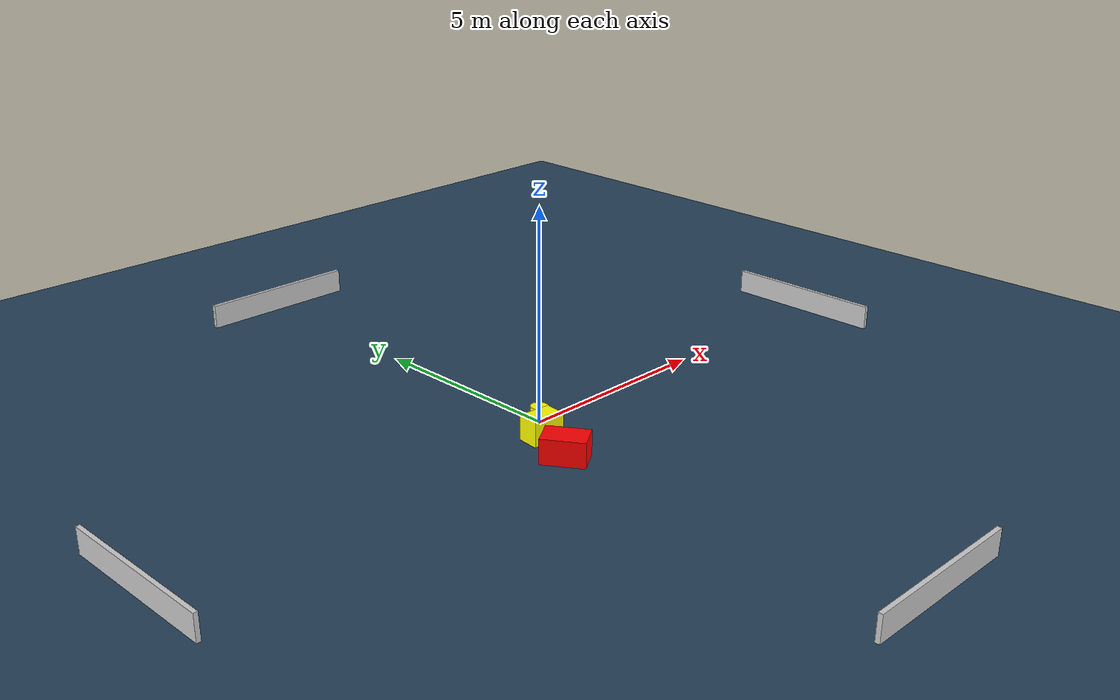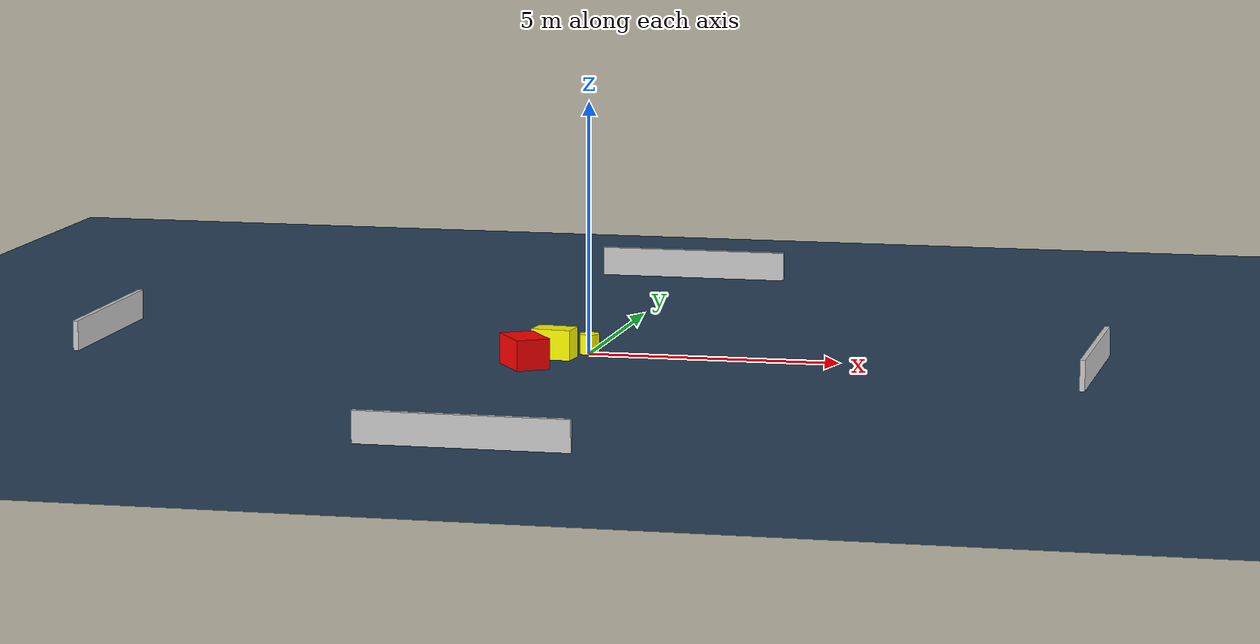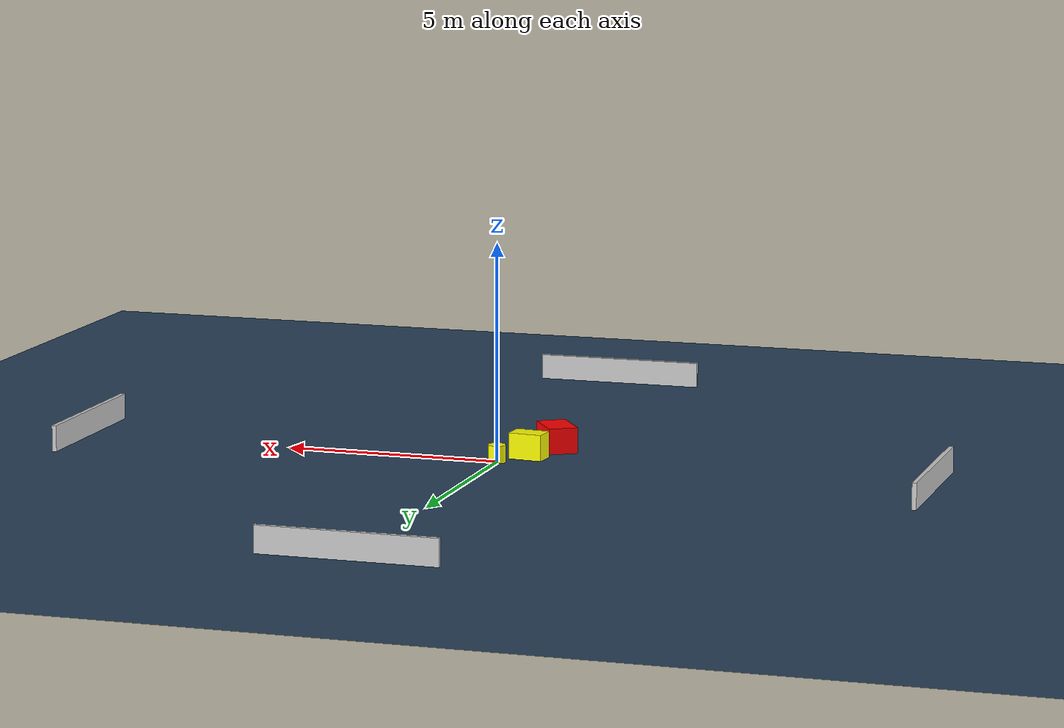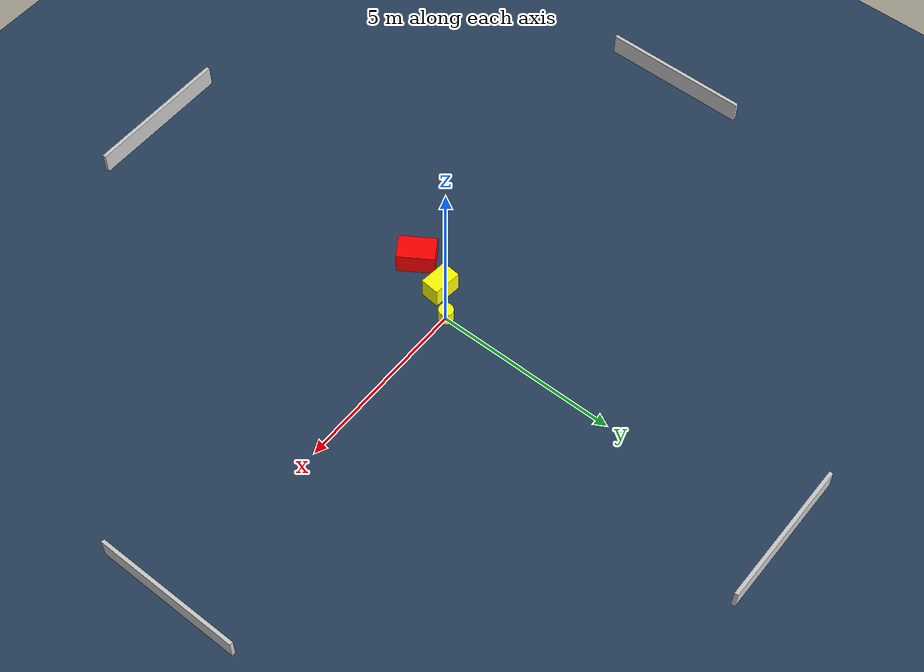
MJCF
<?xml version="1.0" ?>
<mujoco model="generated_environment">
  <option timestep="0.01" integrator="RK4" cone="elliptic"/>
  <default>
    <geom density="1"/>
  </default>
  <asset>
    <texture builtin="gradient" height="3072" name="skybox" rgb1="0.3 0.5 0.7" rgb2="0 0 0" type="skybox" width="512"/>
    <texture builtin="checker" height="300" name="groundplane" rgb1="0.2 0.3 0.4" rgb2="0.1 0.2 0.3" type="2d" width="300"/>
    <material name="groundplane" reflectance="0.2" texrepeat="5 5" texture="groundplane"/>
  </asset>
  <worldbody>
    <light dir="0 0 -1" directional="true" pos="0 0 1.5"/>
    <geom condim="3" friction="0.5 0.005 0.001" material="groundplane" name="floor" pos="0 0 0" size="0 0 0.05" type="plane"/>
    <body name="walls">
      <geom name="wall_1" condim="4" pos="-10.0 0.0 0.3" rgba="0.800000011920929 0.800000011920929 0.800000011920929 1.0" size="0.05 2.0 0.3" type="box"/>
      <geom name="wall_2" condim="4" pos="10.0 0.0 0.3" rgba="0.800000011920929 0.800000011920929 0.800000011920929 1.0" size="0.05 2.0 0.3" type="box"/>
      <geom name="wall_3" condim="4" pos="0.0 -10.0 0.3" rgba="0.800000011920929 0.800000011920929 0.800000011920929 1.0" size="2.0 0.05 0.3" type="box"/>
      <geom name="wall_4" condim="4" pos="0.0 10.0 0.3" rgba="0.800000011920929 0.800000011920929 0.800000011920929 1.0" size="2.0 0.05 0.3" type="box"/>
    </body>
    <body name="robot">
      <joint name="joint_x" type="slide" pos="0 0 0" axis="1 0 0"/>
      <joint name="joint_y" type="slide" pos="0 0 0" axis="0 1 0"/>
      <geom name="robot" type="cylinder" pos="0.0 0.0 0.2" size="0.2 0.2 0.0" mass="5.0" friction="1.0 0.005 0.0001" condim="4" rgba="1.0 1.0 0.0 1.0"/>
    </body>
    <body name="obstacle_1_movable">
      <geom name="obstacle_1_movable" condim="4" pos="-0.5562966861564909 -0.6342446274433365 0.3" euler="0 0 264.28333577893966" friction="0.0 0.005 0.001" rgba="1.0 1.0 0.0 1.0" size="0.2587017528028413 0.39342123725099004 0.3" type="box" mass="0.1"/>
      <joint type="free"/>
    </body>
    <body name="obstacle_2_static">
      <geom name="obstacle_2_static" condim="4" pos="-0.9022724899419889 -1.690281547245141 0.3" euler="0 0 122.98669217408907" friction="0.0 0.005 0.001" rgba="1.0 0.0 0.0 1.0" size="0.5053526397963699 0.33985132664721607 0.3" type="box"/>
    </body>
  </worldbody>
  <actuator>
    <motor name="actuator_x" joint="joint_x" gear="1" ctrlrange="-1 1"/>
    <motor name="actuator_y" joint="joint_y" gear="1" ctrlrange="-1 1"/>
  </actuator>
</mujoco>
